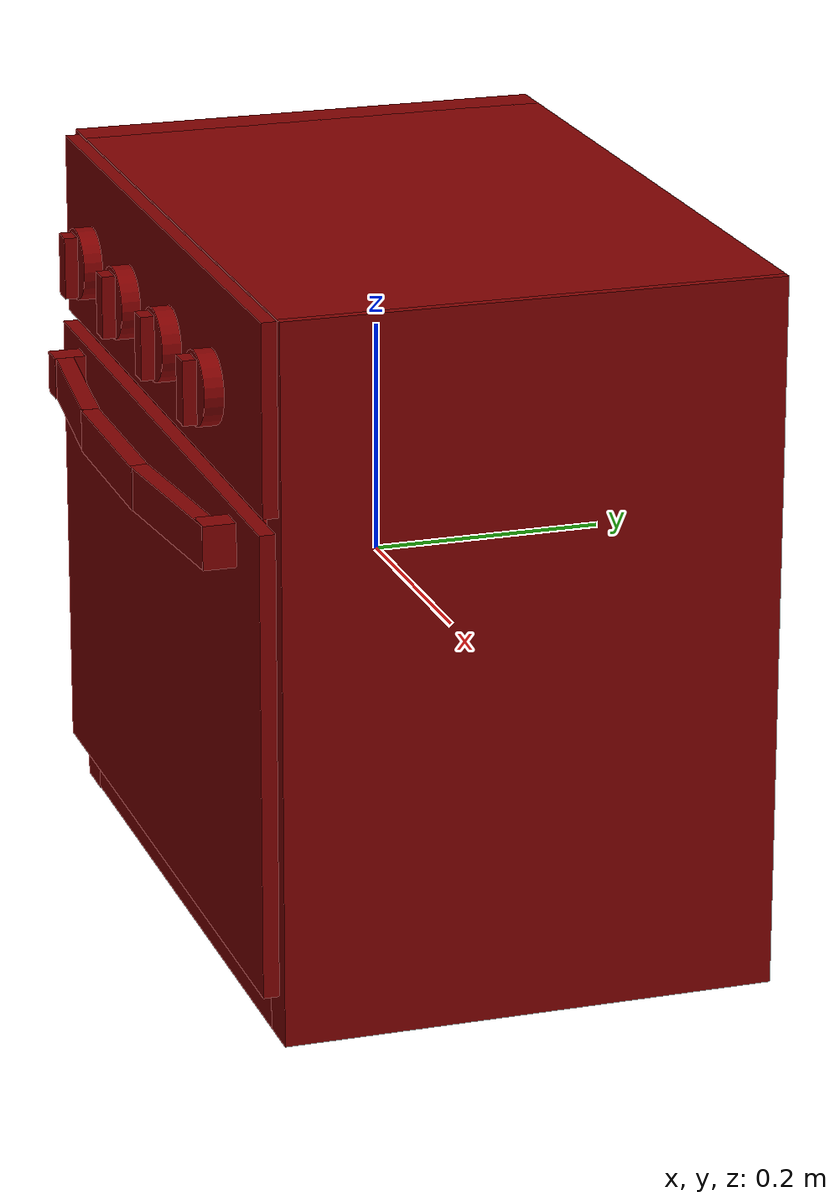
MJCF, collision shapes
<?xml version='1.0' encoding='UTF-8'?>
<mujoco model="model">
  <option timestep="0.002" gravity="0.0 0.0 -9.81"/>
  <compiler angle="radian"/>
  <asset>
    <mesh file="visuals/Body001.obj" name="Body001_vis"/>
    <mesh file="visuals/Door001.obj" name="Door001_vis"/>
    <mesh file="visuals/Door001_Clear.obj" name="Door001_Clear_vis"/>
    <mesh file="visuals/Knob001.obj" name="Knob001_vis"/>
    <mesh file="visuals/Knob002.obj" name="Knob002_vis"/>
    <mesh file="visuals/Knob003.obj" name="Knob003_vis"/>
    <mesh file="visuals/Knob004.obj" name="Knob004_vis"/>
    <mesh file="visuals/Shelf001.obj" name="Shelf001_vis"/>
    <mesh file="visuals/Shelf002.obj" name="Shelf002_vis"/>
    <texture file="visuals/T_BC001.png" name="Body001_material" type="2d"/>
    <material name="Body001_material" rgba="1 1 1 1.0" texture="Body001_material" shininess="0.1" specular="4"/>
    <texture file="visuals/T_BC001.png" name="Door001_material" type="2d"/>
    <material name="Door001_material" rgba="1 1 1 1.0" texture="Door001_material" shininess="0.1" specular="4"/>
    <material name="Door001_Clear_material" rgba="0.1519247144460678 0.1519247144460678 0.1519247144460678 0.800000011920929" shininess="0.5" specular="0.3103448502657381"/>
    <texture file="visuals/T_BC001.png" name="Knob001_material" type="2d"/>
    <material name="Knob001_material" rgba="1 1 1 1.0" texture="Knob001_material" shininess="0.1" specular="4"/>
    <texture file="visuals/T_BC001.png" name="Knob002_material" type="2d"/>
    <material name="Knob002_material" rgba="1 1 1 1.0" texture="Knob002_material" shininess="0.1" specular="4"/>
    <texture file="visuals/T_BC001.png" name="Knob003_material" type="2d"/>
    <material name="Knob003_material" rgba="1 1 1 1.0" texture="Knob003_material" shininess="0.1" specular="4"/>
    <texture file="visuals/T_BC001.png" name="Knob004_material" type="2d"/>
    <material name="Knob004_material" rgba="1 1 1 1.0" texture="Knob004_material" shininess="0.1" specular="4"/>
    <texture file="visuals/T_BC001.png" name="Shelf001_material" type="2d"/>
    <material name="Shelf001_material" rgba="1 1 1 1.0" texture="Shelf001_material" shininess="0.1" specular="4"/>
    <texture file="visuals/T_BC001.png" name="Shelf002_material" type="2d"/>
    <material name="Shelf002_material" rgba="1 1 1 1.0" texture="Shelf002_material" shininess="0.1" specular="4"/>
  </asset>
  <default>
    <default class="visual">
      <geom conaffinity="0" contype="0" group="1" type="mesh"/>
    </default>
    <default class="collision">
      <geom group="0" rgba="0.5 0 0 0.5"/>
    </default>
    <default class="spawn">
      <geom group="0" rgba="1 1 1 0.5" contype="0" conaffinity="0"/>
      <site group="0" rgba="1 1 1 0.5"/>
    </default>
    <default class="region">
      <geom group="1" conaffinity="0" contype="0" rgba="0 1 0 0"/>
    </default>
  </default>
  <worldbody>
    <body>
      <body name="object">
        <geom mesh="Body001_vis" type="mesh" solimp="0.998 0.998 0.001" solref="0.001 1" friction="0.95 0.3 0.1" class="visual" material="Body001_material"/>
        <geom class="collision" type="box" pos="-0.296644 0.032179 0.000730" size="0.019728386774659157 0.21108181774616241 0.30643755197525024" quat="1.0 0.0 0.0 0.0"/>
        <geom class="collision" type="box" pos="0.297368 0.032179 0.001361" size="0.019333679229021072 0.2110818475484848 0.3058062791824341" quat="1.0 0.0 0.0 0.0"/>
        <geom class="collision" type="box" pos="0.003449 0.032179 0.295626" size="0.3056963384151459 0.21108189225196838 0.011541559360921383" quat="1.0 0.0 0.0 0.0"/>
        <geom class="collision" type="box" pos="0.003449 0.032179 -0.257869" size="0.3056963384151459 0.2110813707113266 0.04657629504799843" quat="1.0 0.0 0.0 0.0"/>
        <geom class="collision" type="box" pos="0.003449 -0.181188 0.225599" size="0.3056963384151459 0.010608079843223095 0.08002576977014542" quat="1.0 0.0 0.0 0.0"/>
        <geom class="collision" type="box" pos="-0.272263 0.039704 -0.015651" size="0.012897388078272343 0.18651673197746277 0.0038140853866934776" quat="1.0 0.0 0.0 0.0"/>
        <geom class="collision" type="box" pos="-0.272263 0.039704 -0.164739" size="0.012897388078272343 0.18651673197746277 0.0038140853866934776" quat="1.0 0.0 0.0 0.0"/>
        <geom class="collision" type="box" pos="0.273281 0.039704 -0.164739" size="0.012897388078272343 0.18651673197746277 0.0038140853866934776" quat="1.0 0.0 0.0 0.0"/>
        <geom class="collision" type="box" pos="0.273281 0.039704 -0.015651" size="0.012897388078272343 0.18651673197746277 0.0038140853866934776" quat="1.0 0.0 0.0 0.0"/>
        <geom class="collision" type="box" pos="0.003449 0.233230 0.035686" size="0.3056963384151459 0.010031049139797688 0.25294944643974304" quat="1.0 0.0 0.0 0.0"/>
        <body name="Door001">
          <joint axis="1.0 0.0 0.0" pos="-0.000001 -0.179608 -0.269650" limited="true" name="Door001_joint" range="0.0 1.5707963267948966" type="hinge" damping="1" frictionloss="1" armature=".01" stiffness="1" springref="-5"/>
          <geom mesh="Door001_vis" type="mesh" solimp="0.998 0.998 0.001" solref="0.001 1" friction="0.95 0.3 0.1" class="visual" material="Door001_material"/>
          <geom class="collision" type="box" pos="0.000000 -0.188517 -0.064301" size="0.3108488619327545 0.006727362051606178 0.19733445346355438" quat="1.0 0.0 0.0 0.0"/>
          <geom class="collision" type="box" pos="0.011013 -0.232668 0.107024" size="0.08317650109529495 0.00783295463770628 0.018378378823399544" quat="1.0 0.0 0.0 0.0"/>
          <geom class="collision" type="box" pos="0.169681 -0.225044 0.107024" size="0.08317650109529495 0.00783295463770628 0.018378378823399544" quat="0.9989672303199768 0.0 0.0 0.04543663188815117"/>
          <geom class="collision" type="box" pos="-0.155279 -0.223376 0.107024" size="0.08317650854587555 0.00783295463770628 0.018378378823399544" quat="0.9986017346382141 0.0 -0.0 -0.05286400392651558"/>
          <geom class="collision" type="box" pos="0.242344 -0.211464 0.107024" size="0.011957220733165741 0.013877608813345432 0.018470652401447296" quat="1.0 0.0 0.0 0.0"/>
          <geom class="collision" type="box" pos="-0.236296 -0.211087 0.107024" size="0.01195722445845604 0.013877608813345432 0.018470652401447296" quat="1.0 0.0 0.0 0.0"/>
          <body name="Door001_Clear">
            <geom mesh="Door001_Clear_vis" type="mesh" solimp="0.998 0.998 0.001" solref="0.001 1" friction="0.95 0.3 0.1" class="visual" material="Door001_Clear_material"/>
          </body>
        </body>
        <body name="Knob001">
          <joint axis="0.0 1.0 0.0" pos="-0.189668 -0.209612 0.219696" limited="true" name="Knob001_joint" range="0.0 4.71238898038469" type="hinge" damping="0.05" armature="0.001" springref="-0.01"/>
          <geom mesh="Knob001_vis" type="mesh" solimp="0.998 0.998 0.001" solref="0.001 1" friction="0.95 0.3 0.1" class="visual" material="Knob001_material"/>
          <geom class="collision" type="cylinder" pos="-0.189556 -0.205166 0.220154" size="0.03125251829624176 0.0081293024122715" quat="0.7071067094802856 0.7071068286895752 -1.5700929612083792e-16 2.2148510003422914e-23"/>
          <geom class="collision" type="box" pos="-0.190357 -0.218785 0.219061" size="0.00964608695358038 0.006053298246115446 0.027127230539917946" quat="1.0 0.0 0.0 0.0"/>
        </body>
        <body name="Knob002">
          <joint axis="0.0 1.0 0.0" pos="-0.062747 -0.209612 0.220585" limited="true" name="Knob002_joint" range="0.0 4.71238898038469" type="hinge" damping="0.05" armature="0.001" springref="-0.01"/>
          <geom mesh="Knob002_vis" type="mesh" solimp="0.998 0.998 0.001" solref="0.001 1" friction="0.95 0.3 0.1" class="visual" material="Knob002_material"/>
          <geom class="collision" type="cylinder" pos="-0.063686 -0.205166 0.220154" size="0.03125251829624176 0.0081293024122715" quat="0.7071067094802856 0.7071068286895752 -1.5700929612083792e-16 2.2148510003422914e-23"/>
          <geom class="collision" type="box" pos="-0.063698 -0.218785 0.219061" size="0.00964608695358038 0.006053298246115446 0.027127230539917946" quat="1.0 0.0 0.0 0.0"/>
        </body>
        <body name="Knob003">
          <joint axis="0.0 1.0 0.0" pos="0.062656 -0.209612 0.221326" limited="true" name="Knob003_joint" range="-1.5707963267948966 1.5707963267948966" type="hinge" damping="0.05" armature="0.001" springref="-0.01"/>
          <geom mesh="Knob003_vis" type="mesh" solimp="0.998 0.998 0.001" solref="0.001 1" friction="0.95 0.3 0.1" class="visual" material="Knob003_material"/>
          <geom class="collision" type="cylinder" pos="0.064964 -0.205166 0.220154" size="0.03125251829624176 0.0081293024122715" quat="0.7071067094802856 0.7071068286895752 -1.5700929612083792e-16 2.2148510003422914e-23"/>
          <geom class="collision" type="box" pos="0.061837 -0.218785 0.219061" size="0.00964608695358038 0.006053298246115446 0.027127230539917946" quat="1.0 0.0 0.0 0.0"/>
        </body>
        <body name="Knob004">
          <joint axis="0.0 1.0 0.0" pos="0.190466 -0.209612 0.221326" limited="true" name="Knob004_joint" range="0.0 4.71238898038469" type="hinge" damping="0.05" armature="0.001" springref="-0.01"/>
          <geom mesh="Knob004_vis" type="mesh" solimp="0.998 0.998 0.001" solref="0.001 1" friction="0.95 0.3 0.1" class="visual" material="Knob004_material"/>
          <geom class="collision" type="cylinder" pos="0.190835 -0.205166 0.220154" size="0.03125251829624176 0.0081293024122715" quat="0.7071067094802856 0.7071068286895752 -1.5700929612083792e-16 2.2148510003422914e-23"/>
          <geom class="collision" type="box" pos="0.189570 -0.218785 0.219061" size="0.00964608695358038 0.006053298246115446 0.027127230539917946" quat="1.0 0.0 0.0 0.0"/>
        </body>
        <body name="Shelf001">
          <joint axis="0.0 -1.0 0.0" pos="-0.001159 0.042269 -0.024239" limited="true" name="Shelf001_joint" range="0.0 0.3" type="slide" damping="1" frictionloss="1" armature=".01" stiffness="0.05"/>
          <geom mesh="Shelf001_vis" type="mesh" solimp="0.998 0.998 0.001" solref="0.001 1" friction="0.95 0.3 0.1" class="visual" material="Shelf001_material"/>
          <geom class="collision" type="box" pos="-0.000387 0.031700 -0.033248" size="0.2308759093284607 0.17696762084960938 0.0045929416082799435" quat="1.0 0.0 0.0 0.0"/>
          <geom class="collision" type="box" pos="0.237437 0.031700 -0.019786" size="0.020615795627236366 0.17696762084960938 0.004592908546328545" quat="0.8788831830024719 5.922530176650847e-15 -0.4770370125770569 1.6328288054978657e-08"/>
          <geom class="collision" type="box" pos="0.259033 0.031700 -0.006114" size="0.014445713721215725 0.1769687980413437 0.004766328725963831" quat="1.0 0.0 0.0 0.0"/>
          <geom class="collision" type="box" pos="-0.239362 0.031700 -0.019786" size="0.020615795627236366 0.17696762084960938 0.004592908546328545" quat="0.5048431754112244 2.8944284713146654e-14 -0.8632110953330994 2.9546406210556597e-08"/>
          <geom class="collision" type="box" pos="-0.260897 0.031700 -0.005998" size="0.014445713721215725 0.17696872353553772 0.004766328725963831" quat="1.0 0.0 0.0 0.0"/>
        </body>
        <body name="Shelf002">
          <joint axis="0.0 -1.0 0.0" pos="-0.001202 0.042959 -0.174116" limited="true" name="Shelf002_joint" range="0.0 0.3" type="slide" damping="1" frictionloss="1" armature=".01" stiffness="0.05"/>
          <geom mesh="Shelf002_vis" type="mesh" solimp="0.998 0.998 0.001" solref="0.001 1" friction="0.95 0.3 0.1" class="visual" material="Shelf002_material"/>
          <geom class="collision" type="box" pos="-0.000387 0.031700 -0.182818" size="0.2308759093284607 0.17696762084960938 0.004592934623360634" quat="1.0 0.0 0.0 0.0"/>
          <geom class="collision" type="box" pos="0.237437 0.031700 -0.171619" size="0.020615795627236366 0.17696762084960938 0.004592908546328545" quat="0.8788831830024719 5.922530176650847e-15 -0.4770370125770569 1.6328288054978657e-08"/>
          <geom class="collision" type="box" pos="0.259033 0.031700 -0.156446" size="0.014445713721215725 0.1769685447216034 0.003265595529228449" quat="1.0 0.0 0.0 0.0"/>
          <geom class="collision" type="box" pos="-0.239362 0.031700 -0.171619" size="0.020615795627236366 0.17696762084960938 0.004592908546328545" quat="0.5048431754112244 2.8944284713146654e-14 -0.8632110953330994 2.9546406210556597e-08"/>
          <geom class="collision" type="box" pos="-0.260897 0.031700 -0.156210" size="0.014445713721215725 0.17696847021579742 0.0031455443240702152" quat="1.0 0.0 0.0 0.0"/>
        </body>
        <geom class="region" name="reg_int" type="box" pos="0.00221650000000001 0.0273095 0.03838949999999999" size="0.2783385 0.2010055 0.2548055"/>
        <geom class="region" name="reg_main" type="box" pos="0.0001644999999999841 0.022880499999999998 -1.000000000001e-06" size="0.3165375 0.2203805 0.307168"/>
      </body>
    </body>
  </worldbody>
  <actuator>
    <motor name="Door001_joint_actuator" joint="Door001_joint" gear="50"/>
    <motor name="Knob001_joint_actuator" joint="Knob001_joint" gear="50"/>
    <motor name="Knob002_joint_actuator" joint="Knob002_joint" gear="50"/>
    <motor name="Knob003_joint_actuator" joint="Knob003_joint" gear="50"/>
    <motor name="Knob004_joint_actuator" joint="Knob004_joint" gear="50"/>
    <motor name="Shelf001_joint_actuator" joint="Shelf001_joint" gear="50"/>
    <motor name="Shelf002_joint_actuator" joint="Shelf002_joint" gear="50"/>
  </actuator>
</mujoco>
